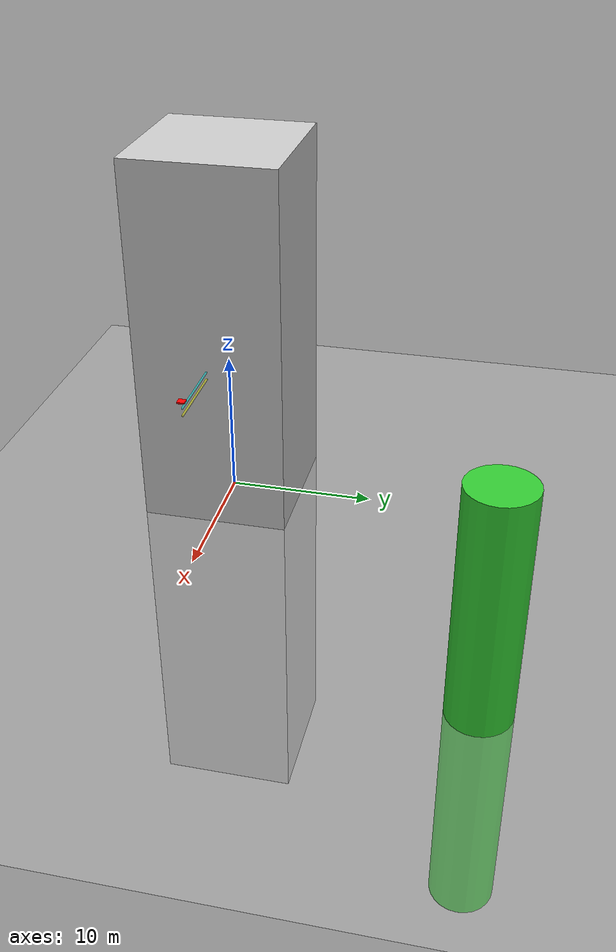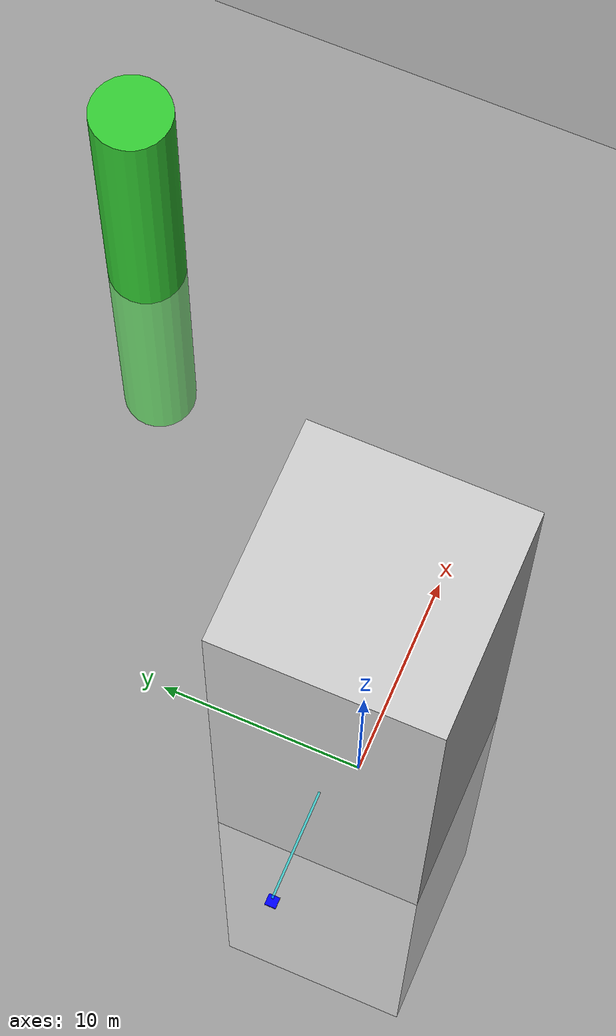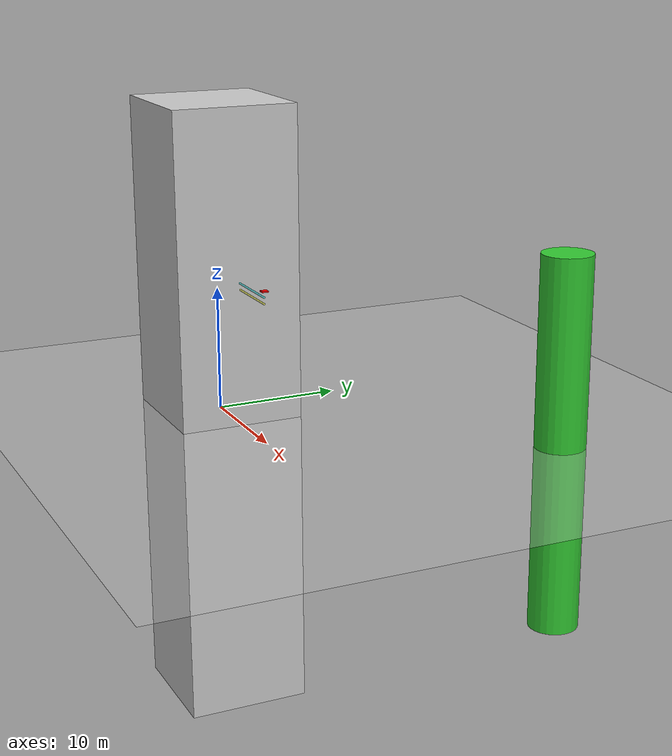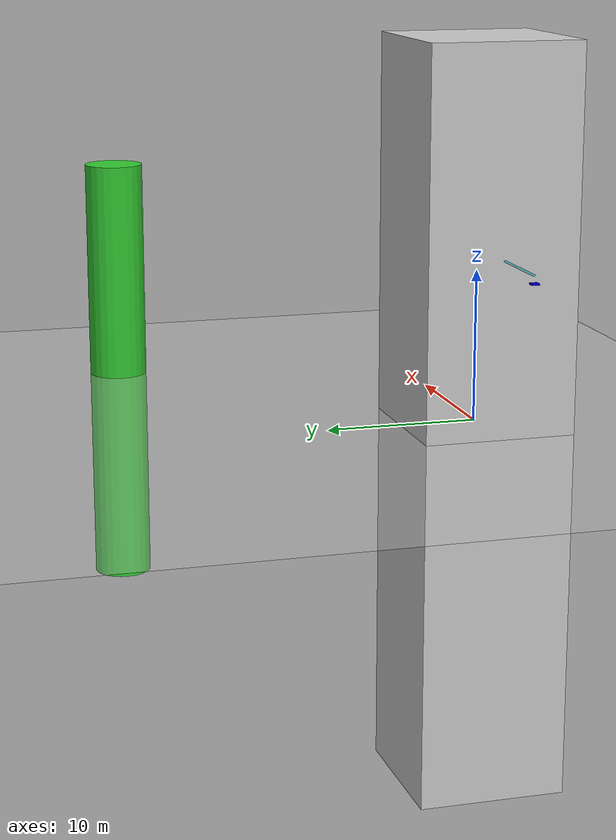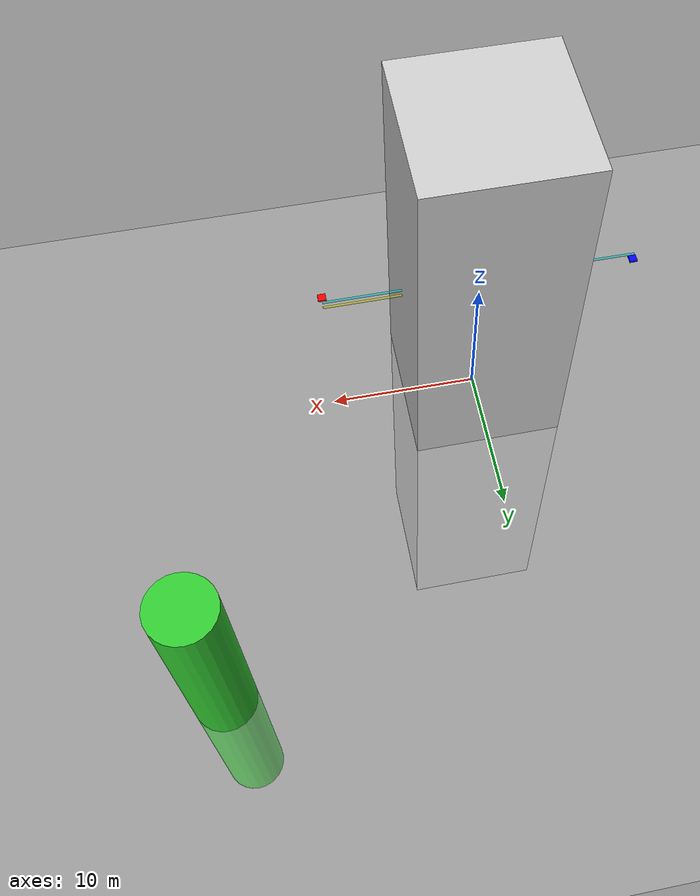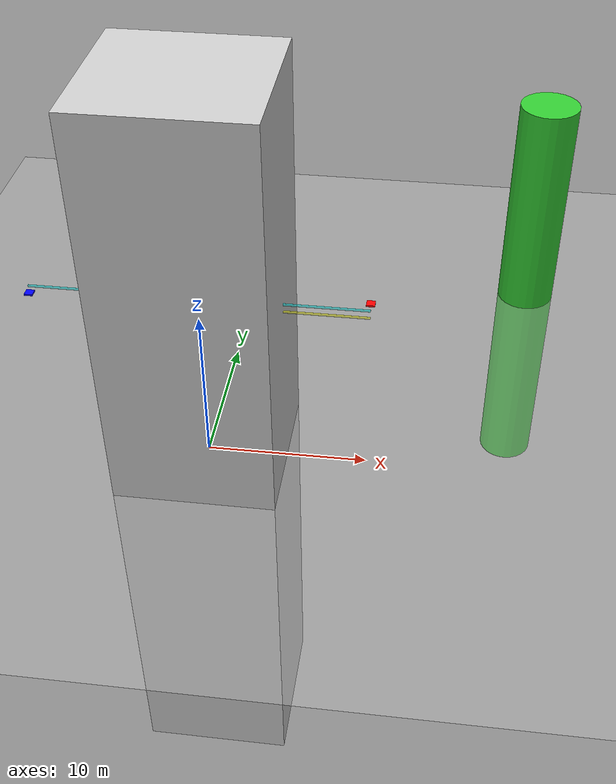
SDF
<?xml version="1.0" ?>
<sdf version="1.6">
  <world name="paris_visual_world">
    <include>
      <uri>model://sun</uri>
    </include>
    <include>
      <uri>model://ground_plane</uri>
    </include>

    <!-- Paris Buildings -->
    <model name="eiffel_tower">
      <static>true</static>
      <pose>0 0 0 0 0 0</pose>
      <link name="link">
        <collision name="collision">
          <geometry>
            <box>
              <size>10 10 50</size>
            </box>
          </geometry>
        </collision>
        <visual name="visual">
          <geometry>
            <box>
              <size>10 10 50</size>
            </box>
          </geometry>
          <material>
            <ambient>0.8 0.8 0.8 1</ambient>
            <diffuse>0.8 0.8 0.8 1</diffuse>
          </material>
        </visual>
      </link>
    </model>

    <!-- Communication Tower -->
    <model name="comm_tower">
      <static>true</static>
      <pose>20 20 0 0 0 0</pose>
      <link name="link">
        <collision name="collision">
          <geometry>
            <cylinder>
              <radius>2</radius>
              <length>30</length>
            </cylinder>
          </geometry>
        </collision>
        <visual name="visual">
          <geometry>
            <cylinder>
              <radius>2</radius>
              <length>30</length>
            </cylinder>
          </geometry>
          <material>
            <ambient>0.2 0.8 0.2 1</ambient>
            <diffuse>0.2 0.8 0.2 1</diffuse>
          </material>
        </visual>
      </link>
    </model>

    <!-- Quadcopters with Communication Links -->
    <model name="quad_001">
      <static>false</static>
      <pose>0 0 10 0 0 0</pose>
      <link name="link">
        <collision name="collision">
          <geometry>
            <box>
              <size>0.5 0.5 0.1</size>
            </box>
          </geometry>
        </collision>
        <visual name="visual">
          <geometry>
            <box>
              <size>0.5 0.5 0.1</size>
            </box>
          </geometry>
          <material>
            <ambient>0 1 0 1</ambient>
            <diffuse>0 1 0 1</diffuse>
          </material>
        </visual>
      </link>
    </model>

    <model name="quad_002">
      <static>false</static>
      <pose>10 0 12 0 0 0</pose>
      <link name="link">
        <collision name="collision">
          <geometry>
            <box>
              <size>0.5 0.5 0.1</size>
            </box>
          </geometry>
        </collision>
        <visual name="visual">
          <geometry>
            <box>
              <size>0.5 0.5 0.1</size>
            </box>
          </geometry>
          <material>
            <ambient>1 0 0 1</ambient>
            <diffuse>1 0 0 1</diffuse>
          </material>
        </visual>
      </link>
    </model>

    <model name="quad_003">
      <static>false</static>
      <pose>-10 0 11 0 0 0</pose>
      <link name="link">
        <collision name="collision">
          <geometry>
            <box>
              <size>0.5 0.5 0.1</size>
            </box>
          </geometry>
        </collision>
        <visual name="visual">
          <geometry>
            <box>
              <size>0.5 0.5 0.1</size>
            </box>
          </geometry>
          <material>
            <ambient>0 0 1 1</ambient>
            <diffuse>0 0 1 1</diffuse>
          </material>
        </visual>
      </link>
    </model>

    <!-- Communication Visualization -->
    <model name="comm_link_1_2">
      <static>true</static>
      <pose>5 0 11 0 0 0</pose>
      <link name="link">
        <visual name="visual">
          <geometry>
            <box>
              <size>10 0.1 0.1</size>
            </box>
          </geometry>
          <material>
            <ambient>1 1 0 0.5</ambient>
            <diffuse>1 1 0 0.5</diffuse>
          </material>
        </visual>
      </link>
    </model>

    <model name="comm_link_2_3">
      <static>true</static>
      <pose>0 0 11.5 0 0 0</pose>
      <link name="link">
        <visual name="visual">
          <geometry>
            <box>
              <size>20 0.1 0.1</size>
            </box>
          </geometry>
          <material>
            <ambient>0 1 1 0.5</ambient>
            <diffuse>0 1 1 0.5</diffuse>
          </material>
        </visual>
      </link>
    </model>

    <physics type="ode">
      <max_step_size>0.001</max_step_size>
      <real_time_factor>1</real_time_factor>
      <real_time_update_rate>1000</real_time_update_rate>
      <gravity>0 0 -9.81</gravity>
    </physics>

    <gui fullscreen='0'>
      <camera name='user_camera'>
        <pose>0 0 100 0 1.5708 0</pose>
        <view_controller>orbit</view_controller>
        <projection_type>perspective</projection_type>
      </camera>
    </gui>
  </world>
</sdf>
